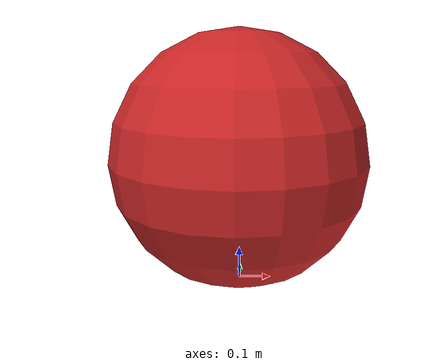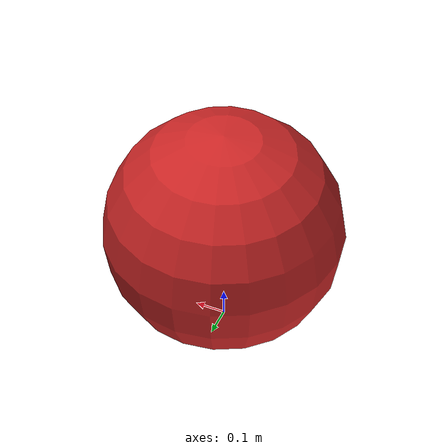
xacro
<?xml version="1.0"?>

<robot xmlns:xacro="http://ros.org/wiki/xacro" name="ball">

  <xacro:include filename="/home/rafael/Proyecto-PAI/urdf/common.urdf.xacro" />

  <link name="base_footprint">
   <visual>
      <origin xyz="0 0 0" rpy="0 0 0" />
      <geometry>
        <box size="0.001 0.001 0.001" />
      </geometry>
    </visual>
  </link>

  <joint name="base_link_joint" type="fixed">
    <origin xyz="0.0 0 0.4" rpy="0 0 0" />
    <parent link="base_footprint"/>
    <child link="base_link" />
  </joint>

  <!-- Ball -->
  <link name="base_link">
    <inertial>
      <mass value="0.01" />
      <origin xyz="0 0 0" />
      <inertia ixx="1.0" ixy="0.0" ixz="0.0"
        iyy="1.0" iyz="0.0"
        izz="1.0" />
    </inertial>
    <visual>
      <geometry>
        <sphere radius="0.4" />
      </geometry>
      <material name="red" />
    </visual>
    <collision>
      <geometry>
        <sphere radius="0.4" />
      </geometry>
    </collision>

  </link>
  <!-- Ball -->
  <link name="camera">
  </link>
  <gazebo reference="camera">
      <material>Gazebo/Black</material>
      <sensor type="camera" name="camara_1">
        <update_rate>1</update_rate>
        <camera name="head">
          <horizontal_fov>1.396234</horizontal_fov>
          <image>
            <width>800</width>
            <height>800</height>
            <format>R8G8B8</format>
          </image>
          <clip>
            <near>0.02</near>
            <far>300</far>
          </clip>
          <noise>
            <type>gaussian</type>
            <mean>0.0</mean>
            <stddev>0.007</stddev>
          </noise>
        </camera>
        <plugin name="camera_controller" filename="libgazebo_ros_camera.so">
          <alwaysOn>true</alwaysOn>
          <updateRate>0.0</updateRate>
          <cameraName>camera</cameraName>
          <imageTopicName>image_raw</imageTopicName>
          <cameraInfoTopicName>camera_info</cameraInfoTopicName>
          <frameName>camara</frameName>
          <hackBaseline>0.07</hackBaseline>
          <distortionK1>0.0</distortionK1>
          <distortionK2>0.0</distortionK2>
          <distortionK3>0.0</distortionK3>
          <distortionT1>0.0</distortionT1>
          <distortionT2>0.0</distortionT2>
        </plugin>
      </sensor>
    </gazebo>
  <joint name="base_camera_joint" type="fixed">
    <origin xyz="0.0 0 0.8" rpy="0 0 0" />
    <parent link="base_footprint"/>
    <child link="camera" />
  </joint>

  <gazebo reference="base_link">
    <material>Gazebo/Red</material>
  </gazebo>

  <xacro:gazebo_object_drive base_frame="base_footprint" topic="cmd_vel" ns="ball" />

</robot>
